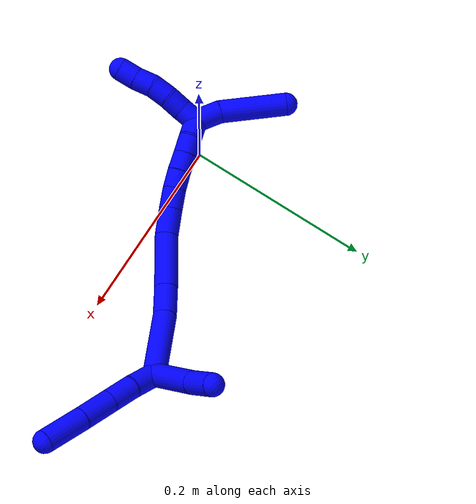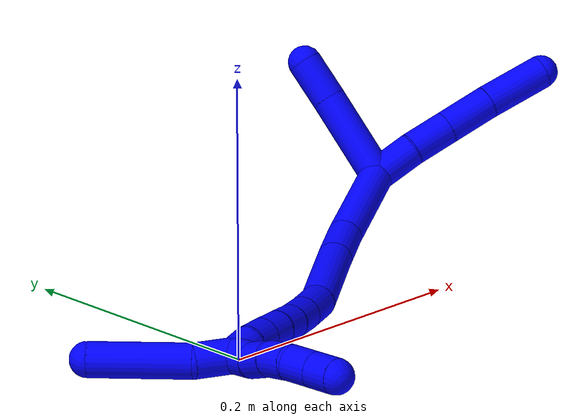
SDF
<sdf version="1.7">
 <world name="default">
  <model name="1">
   <static>0</static>
   <link name="1">
    <collision name="collision-cylinder-e_1_2_8">
     <pose>0.015786 -0.00438 -0.000225 1.62202 1.2998 1.34949</pose>
     <geometry><cylinder><radius>0.0125</radius><length>0.032767</length></cylinder></geometry>
     <surface>
      <friction><ode><mu>1.16</mu><mu2>1.16</mu2><slip1>0</slip1><slip2>0</slip2></ode></friction>
      <contact><ode><kp>1e+06</kp><kd>1</kd><max_vel>0</max_vel><min_depth>0.001</min_depth></ode></contact>
     </surface>
    </collision>
    <visual name="visual-cylinder-e_1_2_8">
     <pose>0.015786 -0.00438 -0.000225 1.62202 1.2998 1.34949</pose>
     <geometry><cylinder><radius>0.0125</radius><length>0.032767</length></cylinder></geometry>
     <material><ambient>0 0 1 1</ambient></material>
    </visual>
    <collision name="collision-cylinder-e_2_8_9">
     <pose>0.046989 -0.011319 -0.000441 1.56774 1.40628 1.40327</pose>
     <geometry><cylinder><radius>0.0125</radius><length>0.031257</length></cylinder></geometry>
     <surface>
      <friction><ode><mu>1.16</mu><mu2>1.16</mu2><slip1>0</slip1><slip2>0</slip2></ode></friction>
      <contact><ode><kp>1e+06</kp><kd>1</kd><max_vel>0</max_vel><min_depth>0.001</min_depth></ode></contact>
     </surface>
    </collision>
    <visual name="visual-cylinder-e_2_8_9">
     <pose>0.046989 -0.011319 -0.000441 1.56774 1.40628 1.40327</pose>
     <geometry><cylinder><radius>0.0125</radius><length>0.031257</length></cylinder></geometry>
     <material><ambient>0 0 1 1</ambient></material>
    </visual>
    <collision name="collision-cylinder-e_3_9_10">
     <pose>0.080849 -0.016947 -0.000421 1.56678 1.40597 1.402</pose>
     <geometry><cylinder><radius>0.0125</radius><length>0.037393</length></cylinder></geometry>
     <surface>
      <friction><ode><mu>1.16</mu><mu2>1.16</mu2><slip1>0</slip1><slip2>0</slip2></ode></friction>
      <contact><ode><kp>1e+06</kp><kd>1</kd><max_vel>0</max_vel><min_depth>0.001</min_depth></ode></contact>
     </surface>
    </collision>
    <visual name="visual-cylinder-e_3_9_10">
     <pose>0.080849 -0.016947 -0.000421 1.56678 1.40597 1.402</pose>
     <geometry><cylinder><radius>0.0125</radius><length>0.037393</length></cylinder></geometry>
     <material><ambient>0 0 1 1</ambient></material>
    </visual>
    <collision name="collision-cylinder-e_4_10_6">
     <pose>0.123348 -0.023311 -0.001122 1.78394 1.43148 1.64574</pose>
     <geometry><cylinder><radius>0.0125</radius><length>0.048583</length></cylinder></geometry>
     <surface>
      <friction><ode><mu>1.16</mu><mu2>1.16</mu2><slip1>0</slip1><slip2>0</slip2></ode></friction>
      <contact><ode><kp>1e+06</kp><kd>1</kd><max_vel>0</max_vel><min_depth>0.001</min_depth></ode></contact>
     </surface>
    </collision>
    <visual name="visual-cylinder-e_4_10_6">
     <pose>0.123348 -0.023311 -0.001122 1.78394 1.43148 1.64574</pose>
     <geometry><cylinder><radius>0.0125</radius><length>0.048583</length></cylinder></geometry>
     <material><ambient>0 0 1 1</ambient></material>
    </visual>
    <collision name="collision-cylinder-e_1_2_11">
     <pose>-0.002453 -0.022229 0.024875 0.729271 -0.073407 -0.028031</pose>
     <geometry><cylinder><radius>0.0125</radius><length>0.0669</length></cylinder></geometry>
     <surface>
      <friction><ode><mu>1.16</mu><mu2>1.16</mu2><slip1>0</slip1><slip2>0</slip2></ode></friction>
      <contact><ode><kp>1e+06</kp><kd>1</kd><max_vel>0</max_vel><min_depth>0.001</min_depth></ode></contact>
     </surface>
    </collision>
    <visual name="visual-cylinder-e_1_2_11">
     <pose>-0.002453 -0.022229 0.024875 0.729271 -0.073407 -0.028031</pose>
     <geometry><cylinder><radius>0.0125</radius><length>0.0669</length></cylinder></geometry>
     <material><ambient>0 0 1 1</ambient></material>
    </visual>
    <collision name="collision-cylinder-e_2_11_5">
     <pose>-0.006715 -0.055924 0.061547 0.771234 -0.109504 -0.044489</pose>
     <geometry><cylinder><radius>0.0125</radius><length>0.0331</length></cylinder></geometry>
     <surface>
      <friction><ode><mu>1.16</mu><mu2>1.16</mu2><slip1>0</slip1><slip2>0</slip2></ode></friction>
      <contact><ode><kp>1e+06</kp><kd>1</kd><max_vel>0</max_vel><min_depth>0.001</min_depth></ode></contact>
     </surface>
    </collision>
    <visual name="visual-cylinder-e_2_11_5">
     <pose>-0.006715 -0.055924 0.061547 0.771234 -0.109504 -0.044489</pose>
     <geometry><cylinder><radius>0.0125</radius><length>0.0331</length></cylinder></geometry>
     <material><ambient>0 0 1 1</ambient></material>
    </visual>
    <collision name="collision-cylinder-e_1_2_12">
     <pose>-0.028305 0.000928 -0.023647 -3.10236 -0.874447 3.05769</pose>
     <geometry><cylinder><radius>0.0125</radius><length>0.073789</length></cylinder></geometry>
     <surface>
      <friction><ode><mu>1.16</mu><mu2>1.16</mu2><slip1>0</slip1><slip2>0</slip2></ode></friction>
      <contact><ode><kp>1e+06</kp><kd>1</kd><max_vel>0</max_vel><min_depth>0.001</min_depth></ode></contact>
     </surface>
    </collision>
    <visual name="visual-cylinder-e_1_2_12">
     <pose>-0.028305 0.000928 -0.023647 -3.10236 -0.874447 3.05769</pose>
     <geometry><cylinder><radius>0.0125</radius><length>0.073789</length></cylinder></geometry>
     <material><ambient>0 0 1 1</ambient></material>
    </visual>
    <collision name="collision-cylinder-e_2_12_13">
     <pose>-0.06768 0.000393 -0.05891 3.01628 -0.757383 -2.82883</pose>
     <geometry><cylinder><radius>0.0125</radius><length>0.032228</length></cylinder></geometry>
     <surface>
      <friction><ode><mu>1.16</mu><mu2>1.16</mu2><slip1>0</slip1><slip2>0</slip2></ode></friction>
      <contact><ode><kp>1e+06</kp><kd>1</kd><max_vel>0</max_vel><min_depth>0.001</min_depth></ode></contact>
     </surface>
    </collision>
    <visual name="visual-cylinder-e_2_12_13">
     <pose>-0.06768 0.000393 -0.05891 3.01628 -0.757383 -2.82883</pose>
     <geometry><cylinder><radius>0.0125</radius><length>0.032228</length></cylinder></geometry>
     <material><ambient>0 0 1 1</ambient></material>
    </visual>
    <collision name="collision-cylinder-e_3_13_14">
     <pose>-0.099258 -0.004325 -0.093527 3.00104 -0.723241 -2.77361</pose>
     <geometry><cylinder><radius>0.0125</radius><length>0.061971</length></cylinder></geometry>
     <surface>
      <friction><ode><mu>1.16</mu><mu2>1.16</mu2><slip1>0</slip1><slip2>0</slip2></ode></friction>
      <contact><ode><kp>1e+06</kp><kd>1</kd><max_vel>0</max_vel><min_depth>0.001</min_depth></ode></contact>
     </surface>
    </collision>
    <visual name="visual-cylinder-e_3_13_14">
     <pose>-0.099258 -0.004325 -0.093527 3.00104 -0.723241 -2.77361</pose>
     <geometry><cylinder><radius>0.0125</radius><length>0.061971</length></cylinder></geometry>
     <material><ambient>0 0 1 1</ambient></material>
    </visual>
    <collision name="collision-cylinder-e_4_14_15">
     <pose>-0.130383 -0.012383 -0.125539 2.65181 -0.804823 -2.07979</pose>
     <geometry><cylinder><radius>0.0125</radius><length>0.029465</length></cylinder></geometry>
     <surface>
      <friction><ode><mu>1.16</mu><mu2>1.16</mu2><slip1>0</slip1><slip2>0</slip2></ode></friction>
      <contact><ode><kp>1e+06</kp><kd>1</kd><max_vel>0</max_vel><min_depth>0.001</min_depth></ode></contact>
     </surface>
    </collision>
    <visual name="visual-cylinder-e_4_14_15">
     <pose>-0.130383 -0.012383 -0.125539 2.65181 -0.804823 -2.07979</pose>
     <geometry><cylinder><radius>0.0125</radius><length>0.029465</length></cylinder></geometry>
     <material><ambient>0 0 1 1</ambient></material>
    </visual>
    <collision name="collision-cylinder-e_5_15_16">
     <pose>-0.149118 -0.021323 -0.141064 2.57581 -0.81083 -1.95096</pose>
     <geometry><cylinder><radius>0.0125</radius><length>0.022396</length></cylinder></geometry>
     <surface>
      <friction><ode><mu>1.16</mu><mu2>1.16</mu2><slip1>0</slip1><slip2>0</slip2></ode></friction>
      <contact><ode><kp>1e+06</kp><kd>1</kd><max_vel>0</max_vel><min_depth>0.001</min_depth></ode></contact>
     </surface>
    </collision>
    <visual name="visual-cylinder-e_5_15_16">
     <pose>-0.149118 -0.021323 -0.141064 2.57581 -0.81083 -1.95096</pose>
     <geometry><cylinder><radius>0.0125</radius><length>0.022396</length></cylinder></geometry>
     <material><ambient>0 0 1 1</ambient></material>
    </visual>
    <collision name="collision-cylinder-e_6_16_17">
     <pose>-0.164898 -0.029491 -0.152633 2.46841 -0.869793 -1.8505</pose>
     <geometry><cylinder><radius>0.0125</radius><length>0.020055</length></cylinder></geometry>
     <surface>
      <friction><ode><mu>1.16</mu><mu2>1.16</mu2><slip1>0</slip1><slip2>0</slip2></ode></friction>
      <contact><ode><kp>1e+06</kp><kd>1</kd><max_vel>0</max_vel><min_depth>0.001</min_depth></ode></contact>
     </surface>
    </collision>
    <visual name="visual-cylinder-e_6_16_17">
     <pose>-0.164898 -0.029491 -0.152633 2.46841 -0.869793 -1.8505</pose>
     <geometry><cylinder><radius>0.0125</radius><length>0.020055</length></cylinder></geometry>
     <material><ambient>0 0 1 1</ambient></material>
    </visual>
    <collision name="collision-cylinder-e_7_17_18">
     <pose>-0.180705 -0.037064 -0.162364 2.49342 -0.946801 -1.98072</pose>
     <geometry><cylinder><radius>0.0125</radius><length>0.020071</length></cylinder></geometry>
     <surface>
      <friction><ode><mu>1.16</mu><mu2>1.16</mu2><slip1>0</slip1><slip2>0</slip2></ode></friction>
      <contact><ode><kp>1e+06</kp><kd>1</kd><max_vel>0</max_vel><min_depth>0.001</min_depth></ode></contact>
     </surface>
    </collision>
    <visual name="visual-cylinder-e_7_17_18">
     <pose>-0.180705 -0.037064 -0.162364 2.49342 -0.946801 -1.98072</pose>
     <geometry><cylinder><radius>0.0125</radius><length>0.020071</length></cylinder></geometry>
     <material><ambient>0 0 1 1</ambient></material>
    </visual>
    <collision name="collision-cylinder-e_8_18_19">
     <pose>-0.196852 -0.044079 -0.171929 2.52376 -0.927436 -2.00559</pose>
     <geometry><cylinder><radius>0.0125</radius><length>0.020005</length></cylinder></geometry>
     <surface>
      <friction><ode><mu>1.16</mu><mu2>1.16</mu2><slip1>0</slip1><slip2>0</slip2></ode></friction>
      <contact><ode><kp>1e+06</kp><kd>1</kd><max_vel>0</max_vel><min_depth>0.001</min_depth></ode></contact>
     </surface>
    </collision>
    <visual name="visual-cylinder-e_8_18_19">
     <pose>-0.196852 -0.044079 -0.171929 2.52376 -0.927436 -2.00559</pose>
     <geometry><cylinder><radius>0.0125</radius><length>0.020005</length></cylinder></geometry>
     <material><ambient>0 0 1 1</ambient></material>
    </visual>
    <collision name="collision-cylinder-e_9_19_1">
     <pose>-0.213268 -0.049431 -0.181909 2.78842 -0.998279 -2.50895</pose>
     <geometry><cylinder><radius>0.0125</radius><length>0.02002</length></cylinder></geometry>
     <surface>
      <friction><ode><mu>1.16</mu><mu2>1.16</mu2><slip1>0</slip1><slip2>0</slip2></ode></friction>
      <contact><ode><kp>1e+06</kp><kd>1</kd><max_vel>0</max_vel><min_depth>0.001</min_depth></ode></contact>
     </surface>
    </collision>
    <visual name="visual-cylinder-e_9_19_1">
     <pose>-0.213268 -0.049431 -0.181909 2.78842 -0.998279 -2.50895</pose>
     <geometry><cylinder><radius>0.0125</radius><length>0.02002</length></cylinder></geometry>
     <material><ambient>0 0 1 1</ambient></material>
    </visual>
    <collision name="collision-cylinder-e_1_1_20">
     <pose>-0.234877 -0.052963 -0.182654 0.36438 -1.23213 -0.259403</pose>
     <geometry><cylinder><radius>0.0125</radius><length>0.027978</length></cylinder></geometry>
     <surface>
      <friction><ode><mu>1.16</mu><mu2>1.16</mu2><slip1>0</slip1><slip2>0</slip2></ode></friction>
      <contact><ode><kp>1e+06</kp><kd>1</kd><max_vel>0</max_vel><min_depth>0.001</min_depth></ode></contact>
     </surface>
    </collision>
    <visual name="visual-cylinder-e_1_1_20">
     <pose>-0.234877 -0.052963 -0.182654 0.36438 -1.23213 -0.259403</pose>
     <geometry><cylinder><radius>0.0125</radius><length>0.027978</length></cylinder></geometry>
     <material><ambient>0 0 1 1</ambient></material>
    </visual>
    <collision name="collision-cylinder-e_2_20_4">
     <pose>-0.277444 -0.057955 -0.157747 0.160816 -0.953861 -0.083228</pose>
     <geometry><cylinder><radius>0.0125</radius><length>0.072022</length></cylinder></geometry>
     <surface>
      <friction><ode><mu>1.16</mu><mu2>1.16</mu2><slip1>0</slip1><slip2>0</slip2></ode></friction>
      <contact><ode><kp>1e+06</kp><kd>1</kd><max_vel>0</max_vel><min_depth>0.001</min_depth></ode></contact>
     </surface>
    </collision>
    <visual name="visual-cylinder-e_2_20_4">
     <pose>-0.277444 -0.057955 -0.157747 0.160816 -0.953861 -0.083228</pose>
     <geometry><cylinder><radius>0.0125</radius><length>0.072022</length></cylinder></geometry>
     <material><ambient>0 0 1 1</ambient></material>
    </visual>
    <collision name="collision-cylinder-e_1_1_21">
     <pose>-0.219596 -0.053722 -0.196474 2.89202 0.210211 1.39848</pose>
     <geometry><cylinder><radius>0.0125</radius><length>0.02</length></cylinder></geometry>
     <surface>
      <friction><ode><mu>1.16</mu><mu2>1.16</mu2><slip1>0</slip1><slip2>0</slip2></ode></friction>
      <contact><ode><kp>1e+06</kp><kd>1</kd><max_vel>0</max_vel><min_depth>0.001</min_depth></ode></contact>
     </surface>
    </collision>
    <visual name="visual-cylinder-e_1_1_21">
     <pose>-0.219596 -0.053722 -0.196474 2.89202 0.210211 1.39848</pose>
     <geometry><cylinder><radius>0.0125</radius><length>0.02</length></cylinder></geometry>
     <material><ambient>0 0 1 1</ambient></material>
    </visual>
    <collision name="collision-cylinder-e_2_21_22">
     <pose>-0.21489 -0.060505 -0.214557 2.67199 0.265027 1.01675</pose>
     <geometry><cylinder><radius>0.0125</radius><length>0.02</length></cylinder></geometry>
     <surface>
      <friction><ode><mu>1.16</mu><mu2>1.16</mu2><slip1>0</slip1><slip2>0</slip2></ode></friction>
      <contact><ode><kp>1e+06</kp><kd>1</kd><max_vel>0</max_vel><min_depth>0.001</min_depth></ode></contact>
     </surface>
    </collision>
    <visual name="visual-cylinder-e_2_21_22">
     <pose>-0.21489 -0.060505 -0.214557 2.67199 0.265027 1.01675</pose>
     <geometry><cylinder><radius>0.0125</radius><length>0.02</length></cylinder></geometry>
     <material><ambient>0 0 1 1</ambient></material>
    </visual>
    <collision name="collision-cylinder-e_3_22_23">
     <pose>-0.209543 -0.067425 -0.232439 2.87299 0.276288 1.59934</pose>
     <geometry><cylinder><radius>0.0125</radius><length>0.02</length></cylinder></geometry>
     <surface>
      <friction><ode><mu>1.16</mu><mu2>1.16</mu2><slip1>0</slip1><slip2>0</slip2></ode></friction>
      <contact><ode><kp>1e+06</kp><kd>1</kd><max_vel>0</max_vel><min_depth>0.001</min_depth></ode></contact>
     </surface>
    </collision>
    <visual name="visual-cylinder-e_3_22_23">
     <pose>-0.209543 -0.067425 -0.232439 2.87299 0.276288 1.59934</pose>
     <geometry><cylinder><radius>0.0125</radius><length>0.02</length></cylinder></geometry>
     <material><ambient>0 0 1 1</ambient></material>
    </visual>
    <collision name="collision-cylinder-e_4_23_24">
     <pose>-0.202899 -0.070343 -0.250909 3.10196 0.402352 2.94784</pose>
     <geometry><cylinder><radius>0.0125</radius><length>0.02</length></cylinder></geometry>
     <surface>
      <friction><ode><mu>1.16</mu><mu2>1.16</mu2><slip1>0</slip1><slip2>0</slip2></ode></friction>
      <contact><ode><kp>1e+06</kp><kd>1</kd><max_vel>0</max_vel><min_depth>0.001</min_depth></ode></contact>
     </surface>
    </collision>
    <visual name="visual-cylinder-e_4_23_24">
     <pose>-0.202899 -0.070343 -0.250909 3.10196 0.402352 2.94784</pose>
     <geometry><cylinder><radius>0.0125</radius><length>0.02</length></cylinder></geometry>
     <material><ambient>0 0 1 1</ambient></material>
    </visual>
    <collision name="collision-cylinder-e_5_24_3">
     <pose>-0.195946 -0.071929 -0.269552 3.01311 0.308605 2.35725</pose>
     <geometry><cylinder><radius>0.0125</radius><length>0.02</length></cylinder></geometry>
     <surface>
      <friction><ode><mu>1.16</mu><mu2>1.16</mu2><slip1>0</slip1><slip2>0</slip2></ode></friction>
      <contact><ode><kp>1e+06</kp><kd>1</kd><max_vel>0</max_vel><min_depth>0.001</min_depth></ode></contact>
     </surface>
    </collision>
    <visual name="visual-cylinder-e_5_24_3">
     <pose>-0.195946 -0.071929 -0.269552 3.01311 0.308605 2.35725</pose>
     <geometry><cylinder><radius>0.0125</radius><length>0.02</length></cylinder></geometry>
     <material><ambient>0 0 1 1</ambient></material>
    </visual>
    <collision name="collision-sphere-3">
     <pose>-0.192908 -0.073149 -0.279001 0 -0 0</pose>
     <geometry><sphere><radius>0.0125</radius></sphere></geometry>
     <surface>
      <friction><ode><mu>1.16</mu><mu2>1.16</mu2><slip1>0</slip1><slip2>0</slip2></ode></friction>
      <contact><ode><kp>1e+06</kp><kd>1</kd><max_vel>0</max_vel><min_depth>0.001</min_depth></ode></contact>
     </surface>
    </collision>
    <visual name="visual-sphere-3">
     <pose>-0.192908 -0.073149 -0.279001 0 -0 0</pose>
     <geometry><sphere><radius>0.0125</radius></sphere></geometry>
     <material><ambient>0 0 1 1</ambient></material>
    </visual>
    <collision name="collision-sphere-24">
     <pose>-0.198983 -0.070708 -0.260103 0 -0 0</pose>
     <geometry><sphere><radius>0.0125</radius></sphere></geometry>
     <surface>
      <friction><ode><mu>1.16</mu><mu2>1.16</mu2><slip1>0</slip1><slip2>0</slip2></ode></friction>
      <contact><ode><kp>1e+06</kp><kd>1</kd><max_vel>0</max_vel><min_depth>0.001</min_depth></ode></contact>
     </surface>
    </collision>
    <visual name="visual-sphere-24">
     <pose>-0.198983 -0.070708 -0.260103 0 -0 0</pose>
     <geometry><sphere><radius>0.0125</radius></sphere></geometry>
     <material><ambient>0 0 1 1</ambient></material>
    </visual>
    <collision name="collision-sphere-23">
     <pose>-0.206815 -0.069979 -0.241715 0 -0 0</pose>
     <geometry><sphere><radius>0.0125</radius></sphere></geometry>
     <surface>
      <friction><ode><mu>1.16</mu><mu2>1.16</mu2><slip1>0</slip1><slip2>0</slip2></ode></friction>
      <contact><ode><kp>1e+06</kp><kd>1</kd><max_vel>0</max_vel><min_depth>0.001</min_depth></ode></contact>
     </surface>
    </collision>
    <visual name="visual-sphere-23">
     <pose>-0.206815 -0.069979 -0.241715 0 -0 0</pose>
     <geometry><sphere><radius>0.0125</radius></sphere></geometry>
     <material><ambient>0 0 1 1</ambient></material>
    </visual>
    <collision name="collision-sphere-22">
     <pose>-0.21227 -0.064872 -0.223163 0 -0 0</pose>
     <geometry><sphere><radius>0.0125</radius></sphere></geometry>
     <surface>
      <friction><ode><mu>1.16</mu><mu2>1.16</mu2><slip1>0</slip1><slip2>0</slip2></ode></friction>
      <contact><ode><kp>1e+06</kp><kd>1</kd><max_vel>0</max_vel><min_depth>0.001</min_depth></ode></contact>
     </surface>
    </collision>
    <visual name="visual-sphere-22">
     <pose>-0.21227 -0.064872 -0.223163 0 -0 0</pose>
     <geometry><sphere><radius>0.0125</radius></sphere></geometry>
     <material><ambient>0 0 1 1</ambient></material>
    </visual>
    <collision name="collision-sphere-21">
     <pose>-0.217509 -0.056138 -0.205951 0 -0 0</pose>
     <geometry><sphere><radius>0.0125</radius></sphere></geometry>
     <surface>
      <friction><ode><mu>1.16</mu><mu2>1.16</mu2><slip1>0</slip1><slip2>0</slip2></ode></friction>
      <contact><ode><kp>1e+06</kp><kd>1</kd><max_vel>0</max_vel><min_depth>0.001</min_depth></ode></contact>
     </surface>
    </collision>
    <visual name="visual-sphere-21">
     <pose>-0.217509 -0.056138 -0.205951 0 -0 0</pose>
     <geometry><sphere><radius>0.0125</radius></sphere></geometry>
     <material><ambient>0 0 1 1</ambient></material>
    </visual>
    <collision name="collision-sphere-4">
     <pose>-0.306816 -0.061291 -0.137182 0 -0 0</pose>
     <geometry><sphere><radius>0.0125</radius></sphere></geometry>
     <surface>
      <friction><ode><mu>1.16</mu><mu2>1.16</mu2><slip1>0</slip1><slip2>0</slip2></ode></friction>
      <contact><ode><kp>1e+06</kp><kd>1</kd><max_vel>0</max_vel><min_depth>0.001</min_depth></ode></contact>
     </surface>
    </collision>
    <visual name="visual-sphere-4">
     <pose>-0.306816 -0.061291 -0.137182 0 -0 0</pose>
     <geometry><sphere><radius>0.0125</radius></sphere></geometry>
     <material><ambient>0 0 1 1</ambient></material>
    </visual>
    <collision name="collision-sphere-20">
     <pose>-0.248072 -0.054619 -0.178312 0 -0 0</pose>
     <geometry><sphere><radius>0.0125</radius></sphere></geometry>
     <surface>
      <friction><ode><mu>1.16</mu><mu2>1.16</mu2><slip1>0</slip1><slip2>0</slip2></ode></friction>
      <contact><ode><kp>1e+06</kp><kd>1</kd><max_vel>0</max_vel><min_depth>0.001</min_depth></ode></contact>
     </surface>
    </collision>
    <visual name="visual-sphere-20">
     <pose>-0.248072 -0.054619 -0.178312 0 -0 0</pose>
     <geometry><sphere><radius>0.0125</radius></sphere></geometry>
     <material><ambient>0 0 1 1</ambient></material>
    </visual>
    <collision name="collision-sphere-11">
     <pose>-0.004907 -0.044457 0.049751 0 -0 0</pose>
     <geometry><sphere><radius>0.0125</radius></sphere></geometry>
     <surface>
      <friction><ode><mu>1.16</mu><mu2>1.16</mu2><slip1>0</slip1><slip2>0</slip2></ode></friction>
      <contact><ode><kp>1e+06</kp><kd>1</kd><max_vel>0</max_vel><min_depth>0.001</min_depth></ode></contact>
     </surface>
    </collision>
    <visual name="visual-sphere-11">
     <pose>-0.004907 -0.044457 0.049751 0 -0 0</pose>
     <geometry><sphere><radius>0.0125</radius></sphere></geometry>
     <material><ambient>0 0 1 1</ambient></material>
    </visual>
    <collision name="collision-sphere-6">
     <pose>0.147405 -0.026608 -0.001836 0 -0 0</pose>
     <geometry><sphere><radius>0.0125</radius></sphere></geometry>
     <surface>
      <friction><ode><mu>1.16</mu><mu2>1.16</mu2><slip1>0</slip1><slip2>0</slip2></ode></friction>
      <contact><ode><kp>1e+06</kp><kd>1</kd><max_vel>0</max_vel><min_depth>0.001</min_depth></ode></contact>
     </surface>
    </collision>
    <visual name="visual-sphere-6">
     <pose>0.147405 -0.026608 -0.001836 0 -0 0</pose>
     <geometry><sphere><radius>0.0125</radius></sphere></geometry>
     <material><ambient>0 0 1 1</ambient></material>
    </visual>
    <collision name="collision-sphere-10">
     <pose>0.099292 -0.020014 -0.000409 0 -0 0</pose>
     <geometry><sphere><radius>0.0125</radius></sphere></geometry>
     <surface>
      <friction><ode><mu>1.16</mu><mu2>1.16</mu2><slip1>0</slip1><slip2>0</slip2></ode></friction>
      <contact><ode><kp>1e+06</kp><kd>1</kd><max_vel>0</max_vel><min_depth>0.001</min_depth></ode></contact>
     </surface>
    </collision>
    <visual name="visual-sphere-10">
     <pose>0.099292 -0.020014 -0.000409 0 -0 0</pose>
     <geometry><sphere><radius>0.0125</radius></sphere></geometry>
     <material><ambient>0 0 1 1</ambient></material>
    </visual>
    <collision name="collision-sphere-9">
     <pose>0.062406 -0.013879 -0.000433 0 -0 0</pose>
     <geometry><sphere><radius>0.0125</radius></sphere></geometry>
     <surface>
      <friction><ode><mu>1.16</mu><mu2>1.16</mu2><slip1>0</slip1><slip2>0</slip2></ode></friction>
      <contact><ode><kp>1e+06</kp><kd>1</kd><max_vel>0</max_vel><min_depth>0.001</min_depth></ode></contact>
     </surface>
    </collision>
    <visual name="visual-sphere-9">
     <pose>0.062406 -0.013879 -0.000433 0 -0 0</pose>
     <geometry><sphere><radius>0.0125</radius></sphere></geometry>
     <material><ambient>0 0 1 1</ambient></material>
    </visual>
    <collision name="collision-sphere-2">
     <geometry><sphere><radius>0.0125</radius></sphere></geometry>
     <surface>
      <friction><ode><mu>1.16</mu><mu2>1.16</mu2><slip1>0</slip1><slip2>0</slip2></ode></friction>
      <contact><ode><kp>1e+06</kp><kd>1</kd><max_vel>0</max_vel><min_depth>0.001</min_depth></ode></contact>
     </surface>
    </collision>
    <visual name="visual-sphere-2">
     <geometry><sphere><radius>0.0125</radius></sphere></geometry>
     <material><ambient>0 0 1 1</ambient></material>
    </visual>
    <collision name="collision-sphere-19">
     <pose>-0.204855 -0.047555 -0.17682 0 -0 0</pose>
     <geometry><sphere><radius>0.0125</radius></sphere></geometry>
     <surface>
      <friction><ode><mu>1.16</mu><mu2>1.16</mu2><slip1>0</slip1><slip2>0</slip2></ode></friction>
      <contact><ode><kp>1e+06</kp><kd>1</kd><max_vel>0</max_vel><min_depth>0.001</min_depth></ode></contact>
     </surface>
    </collision>
    <visual name="visual-sphere-19">
     <pose>-0.204855 -0.047555 -0.17682 0 -0 0</pose>
     <geometry><sphere><radius>0.0125</radius></sphere></geometry>
     <material><ambient>0 0 1 1</ambient></material>
    </visual>
    <collision name="collision-sphere-8">
     <pose>0.031571 -0.00876 -0.000449 0 -0 0</pose>
     <geometry><sphere><radius>0.0125</radius></sphere></geometry>
     <surface>
      <friction><ode><mu>1.16</mu><mu2>1.16</mu2><slip1>0</slip1><slip2>0</slip2></ode></friction>
      <contact><ode><kp>1e+06</kp><kd>1</kd><max_vel>0</max_vel><min_depth>0.001</min_depth></ode></contact>
     </surface>
    </collision>
    <visual name="visual-sphere-8">
     <pose>0.031571 -0.00876 -0.000449 0 -0 0</pose>
     <geometry><sphere><radius>0.0125</radius></sphere></geometry>
     <material><ambient>0 0 1 1</ambient></material>
    </visual>
    <collision name="collision-sphere-5">
     <pose>-0.008524 -0.06739 0.073343 0 -0 0</pose>
     <geometry><sphere><radius>0.0125</radius></sphere></geometry>
     <surface>
      <friction><ode><mu>1.16</mu><mu2>1.16</mu2><slip1>0</slip1><slip2>0</slip2></ode></friction>
      <contact><ode><kp>1e+06</kp><kd>1</kd><max_vel>0</max_vel><min_depth>0.001</min_depth></ode></contact>
     </surface>
    </collision>
    <visual name="visual-sphere-5">
     <pose>-0.008524 -0.06739 0.073343 0 -0 0</pose>
     <geometry><sphere><radius>0.0125</radius></sphere></geometry>
     <material><ambient>0 0 1 1</ambient></material>
    </visual>
    <collision name="collision-sphere-12">
     <pose>-0.05661 0.001856 -0.047293 0 -0 0</pose>
     <geometry><sphere><radius>0.0125</radius></sphere></geometry>
     <surface>
      <friction><ode><mu>1.16</mu><mu2>1.16</mu2><slip1>0</slip1><slip2>0</slip2></ode></friction>
      <contact><ode><kp>1e+06</kp><kd>1</kd><max_vel>0</max_vel><min_depth>0.001</min_depth></ode></contact>
     </surface>
    </collision>
    <visual name="visual-sphere-12">
     <pose>-0.05661 0.001856 -0.047293 0 -0 0</pose>
     <geometry><sphere><radius>0.0125</radius></sphere></geometry>
     <material><ambient>0 0 1 1</ambient></material>
    </visual>
    <collision name="collision-sphere-13">
     <pose>-0.078751 -0.00107 -0.070527 0 -0 0</pose>
     <geometry><sphere><radius>0.0125</radius></sphere></geometry>
     <surface>
      <friction><ode><mu>1.16</mu><mu2>1.16</mu2><slip1>0</slip1><slip2>0</slip2></ode></friction>
      <contact><ode><kp>1e+06</kp><kd>1</kd><max_vel>0</max_vel><min_depth>0.001</min_depth></ode></contact>
     </surface>
    </collision>
    <visual name="visual-sphere-13">
     <pose>-0.078751 -0.00107 -0.070527 0 -0 0</pose>
     <geometry><sphere><radius>0.0125</radius></sphere></geometry>
     <material><ambient>0 0 1 1</ambient></material>
    </visual>
    <collision name="collision-sphere-14">
     <pose>-0.119765 -0.007579 -0.116527 0 -0 0</pose>
     <geometry><sphere><radius>0.0125</radius></sphere></geometry>
     <surface>
      <friction><ode><mu>1.16</mu><mu2>1.16</mu2><slip1>0</slip1><slip2>0</slip2></ode></friction>
      <contact><ode><kp>1e+06</kp><kd>1</kd><max_vel>0</max_vel><min_depth>0.001</min_depth></ode></contact>
     </surface>
    </collision>
    <visual name="visual-sphere-14">
     <pose>-0.119765 -0.007579 -0.116527 0 -0 0</pose>
     <geometry><sphere><radius>0.0125</radius></sphere></geometry>
     <material><ambient>0 0 1 1</ambient></material>
    </visual>
    <collision name="collision-sphere-15">
     <pose>-0.141 -0.017188 -0.134552 0 -0 0</pose>
     <geometry><sphere><radius>0.0125</radius></sphere></geometry>
     <surface>
      <friction><ode><mu>1.16</mu><mu2>1.16</mu2><slip1>0</slip1><slip2>0</slip2></ode></friction>
      <contact><ode><kp>1e+06</kp><kd>1</kd><max_vel>0</max_vel><min_depth>0.001</min_depth></ode></contact>
     </surface>
    </collision>
    <visual name="visual-sphere-15">
     <pose>-0.141 -0.017188 -0.134552 0 -0 0</pose>
     <geometry><sphere><radius>0.0125</radius></sphere></geometry>
     <material><ambient>0 0 1 1</ambient></material>
    </visual>
    <collision name="collision-sphere-16">
     <pose>-0.157235 -0.025459 -0.147577 0 -0 0</pose>
     <geometry><sphere><radius>0.0125</radius></sphere></geometry>
     <surface>
      <friction><ode><mu>1.16</mu><mu2>1.16</mu2><slip1>0</slip1><slip2>0</slip2></ode></friction>
      <contact><ode><kp>1e+06</kp><kd>1</kd><max_vel>0</max_vel><min_depth>0.001</min_depth></ode></contact>
     </surface>
    </collision>
    <visual name="visual-sphere-16">
     <pose>-0.157235 -0.025459 -0.147577 0 -0 0</pose>
     <geometry><sphere><radius>0.0125</radius></sphere></geometry>
     <material><ambient>0 0 1 1</ambient></material>
    </visual>
    <collision name="collision-sphere-17">
     <pose>-0.17256 -0.033523 -0.15769 0 -0 0</pose>
     <geometry><sphere><radius>0.0125</radius></sphere></geometry>
     <surface>
      <friction><ode><mu>1.16</mu><mu2>1.16</mu2><slip1>0</slip1><slip2>0</slip2></ode></friction>
      <contact><ode><kp>1e+06</kp><kd>1</kd><max_vel>0</max_vel><min_depth>0.001</min_depth></ode></contact>
     </surface>
    </collision>
    <visual name="visual-sphere-17">
     <pose>-0.17256 -0.033523 -0.15769 0 -0 0</pose>
     <geometry><sphere><radius>0.0125</radius></sphere></geometry>
     <material><ambient>0 0 1 1</ambient></material>
    </visual>
    <collision name="collision-sphere-18">
     <pose>-0.188849 -0.040604 -0.167038 0 -0 0</pose>
     <geometry><sphere><radius>0.0125</radius></sphere></geometry>
     <surface>
      <friction><ode><mu>1.16</mu><mu2>1.16</mu2><slip1>0</slip1><slip2>0</slip2></ode></friction>
      <contact><ode><kp>1e+06</kp><kd>1</kd><max_vel>0</max_vel><min_depth>0.001</min_depth></ode></contact>
     </surface>
    </collision>
    <visual name="visual-sphere-18">
     <pose>-0.188849 -0.040604 -0.167038 0 -0 0</pose>
     <geometry><sphere><radius>0.0125</radius></sphere></geometry>
     <material><ambient>0 0 1 1</ambient></material>
    </visual>
    <collision name="collision-sphere-1">
     <pose>-0.221682 -0.051306 -0.186997 0 -0 0</pose>
     <geometry><sphere><radius>0.0125</radius></sphere></geometry>
     <surface>
      <friction><ode><mu>1.16</mu><mu2>1.16</mu2><slip1>0</slip1><slip2>0</slip2></ode></friction>
      <contact><ode><kp>1e+06</kp><kd>1</kd><max_vel>0</max_vel><min_depth>0.001</min_depth></ode></contact>
     </surface>
    </collision>
    <visual name="visual-sphere-1">
     <pose>-0.221682 -0.051306 -0.186997 0 -0 0</pose>
     <geometry><sphere><radius>0.0125</radius></sphere></geometry>
     <material><ambient>0 0 1 1</ambient></material>
    </visual>
    <inertial>
     <pose>-0.092719 -0.029296 -0.087786 0 -0 0</pose>
     <mass>0.75</mass>
     <inertia><ixx>-9e-06</ixx><ixy>0</ixy><ixz>0</ixz><iyy>0.000138</iyy><iyz>0</iyz><izz>8.3e-05</izz></inertia>
    </inertial>
   </link>
   <pose>0.239881 0.100484 0.054288 -1.39108 -0.251859 -0.291567</pose>
  </model>
 </world>
</sdf>
